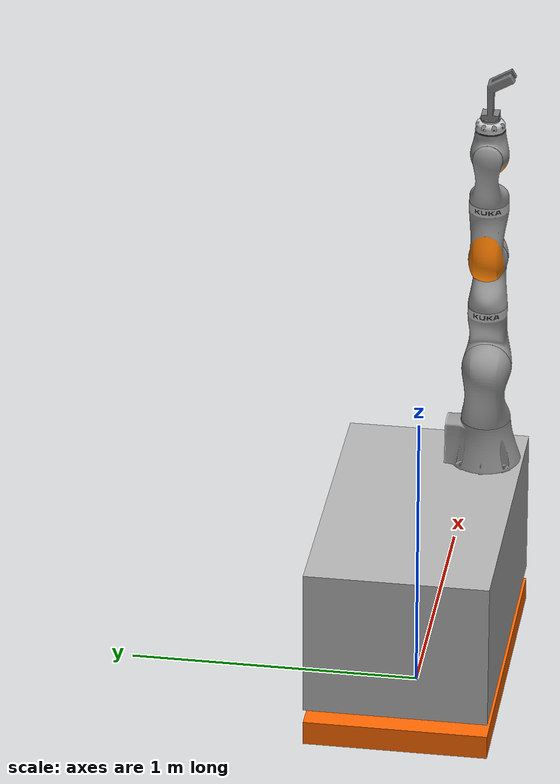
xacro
<?xml version="1.0"?>

<!-- top level -->
<robot name="iiwa14" xmlns:xacro="http://www.ros.org/wiki/xacro">

    <!-- include the lbr iiwa macro -->
    <xacro:include filename="$(find lbr_description)/urdf/iiwa14/iiwa14_description.xacro" />
    <!-- Include the mobile platform xacro-->
    <xacro:include filename="$(find lbr_description)/urdf/iiwa14/mobile_platform.xacro"/>
    <!-- Include the beer tool xacro -->
    <xacro:include filename="$(find lbr_description)/urdf/iiwa14/beer_tool.xacro" />

    <xacro:arg name="robot_name" default="lbr" />
    <xacro:arg name="mode" default="true" />
    <xacro:arg
        name="system_parameters_path"
        default="$(find lbr_ros2_control)/config/lbr_system_parameters.yaml" />

    <!-- fixed to world, see http://classic.gazebosim.org/tutorials?tut=ros_urdf&cat=connect_ros -->
    <link name="world" />

    <!--joint
        between world and link_0-->
    <joint name="world_joint" type="fixed">
        <origin xyz="0 0 0.0775" rpy="0.0 0.0 0.0"/>
        <parent link="world" />
        <child link="base_link" />
    </joint>

    <joint name="base_link-to-iiwa" type="fixed">
        <origin rpy="0 0 -1.5708" xyz="0.363 -0.184 0.2625"/>
        <parent link="base_link_top"/>
        <child link="link_0"/>
    </joint>

    <joint name="joint_ee" type="fixed">
        <parent link="beertool" />
        <child link="link_ee" />
        <origin xyz="0 -0.15 -0.04" rpy="1.570796 0 0" />
    </joint>

    <!-- iiwa -->
    <xacro:iiwa14
        robot_name="$(arg robot_name)"
        mode="$(arg mode)"
        system_parameters_path="$(arg system_parameters_path)" />
</robot>

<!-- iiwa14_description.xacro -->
<robot xmlns:xacro="http://www.ros.org/wiki/xacro">
    <!-- robot as extracted via https://github.com/syuntoku14/fusion2urdf -->
    <xacro:macro name="iiwa14"
        params="robot_name:=^|lbr mode:=^|mock system_parameters_path:=^|'$(find lbr_ros2_control)/config/lbr_system_parameters.yaml'">

        <!-- includes -->
        <xacro:include filename="$(find lbr_description)/gazebo/lbr_gazebo.xacro" />
        <xacro:include filename="$(find lbr_ros2_control)/config/lbr_system_interface.xacro" />

        <!-- joint limits via yaml -->
        <xacro:property name="joint_limits_path"
            value="$(find lbr_description)/urdf/iiwa14/joint_limits.yaml" />
        <xacro:property name="joint_limits" value="${xacro.load_yaml(joint_limits_path)}" />

        <!-- constants -->
        <xacro:property name="PI" value="3.1415926535897931" />
        <xacro:property name="joint_damping" value="10.0" />
        <xacro:property name="joint_friction" value="0.1" />

        <!-- macros for gazebo / mock / hardware -->
        <xacro:lbr_gazebo robot_name="${robot_name}" />
        <xacro:lbr_system_interface
            mode="${mode}"
            joint_limits="${joint_limits}"
            system_parameters_path="${system_parameters_path}" />

        <link name="link_0">
            <inertial>
                <origin rpy="0 0 0" xyz="-0.012822 0.0 0.071507" />
                <mass value="7.050378" />
                <inertia ixx="0.031226" ixy="0.0" ixz="0.000871" iyy="0.039697" iyz="0.0"
                    izz="0.043102" />
            </inertial>
            <visual>
                <origin rpy="0 0 0" xyz="0 0 0" />
                <geometry>
                    <mesh filename="package://lbr_description/meshes/iiwa14/visual/link_0.dae" />
                </geometry>
            </visual>
            <collision>
                <origin rpy="0 0 0" xyz="0 0 0" />
                <geometry>
                    <mesh filename="package://lbr_description/meshes/iiwa14/collision/link_0.stl" />
                </geometry>
            </collision>
        </link>

        <joint name="A1" type="revolute">
            <origin rpy="0 0 0" xyz="0.0 0.0 0.1475" />
            <parent link="link_0" />
            <child link="link_1" />
            <axis xyz="0.0 0.0 1.0" />
            <limit
                effort="${joint_limits['A1']['effort']}"
                lower="${joint_limits['A1']['lower'] * PI / 180}"
                upper="${joint_limits['A1']['upper'] * PI / 180}"
                velocity="${joint_limits['A1']['velocity'] * PI / 180}" />
            <dynamics damping="${joint_damping}" friction="${joint_friction}" />
        </joint>

        <link name="link_1">
            <inertial>
                <origin rpy="0 0 0" xyz="0.0 -0.033795 0.132404" />
                <mass value="5.289529" />
                <inertia ixx="0.042462" ixy="0.0" ixz="0.0" iyy="0.042838" iyz="0.006341"
                    izz="0.01587" />
            </inertial>
            <visual>
                <origin rpy="0 0 0" xyz="0.0 0.0 -0.1475" />
                <geometry>
                    <mesh filename="package://lbr_description/meshes/iiwa14/visual/link_1.dae" />
                </geometry>
            </visual>
            <collision>
                <origin rpy="0 0 0" xyz="0.0 0.0 -0.1475" />
                <geometry>
                    <mesh filename="package://lbr_description/meshes/iiwa14/collision/link_1.stl" />
                </geometry>
            </collision>
        </link>

        <joint name="A2" type="revolute">
            <origin rpy="0 0 0" xyz="0.0 -0.01 0.2125" />
            <parent link="link_1" />
            <child link="link_2" />
            <axis xyz="0.0 1.0 0.0" />
            <limit
                effort="${joint_limits['A2']['effort']}"
                lower="${joint_limits['A2']['lower'] * PI / 180}"
                upper="${joint_limits['A2']['upper'] * PI / 180}"
                velocity="${joint_limits['A2']['velocity'] * PI / 180}" />
            <dynamics damping="${joint_damping}" friction="${joint_friction}" />
        </joint>

        <link name="link_2">
            <inertial>
                <origin rpy="0 0 0" xyz="0.000136 0.047548 0.076322" />
                <mass value="5.688888" />
                <inertia ixx="0.055182" ixy="-3.3e-05" ixz="5.6e-05" iyy="0.053983" iyz="0.010034"
                    izz="0.016523" />
            </inertial>
            <visual>
                <origin rpy="0 0 0" xyz="0.0 0.01 -0.36" />
                <geometry>
                    <mesh filename="package://lbr_description/meshes/iiwa14/visual/link_2.dae" />
                </geometry>
            </visual>
            <collision>
                <origin rpy="0 0 0" xyz="0.0 0.01 -0.36" />
                <geometry>
                    <mesh filename="package://lbr_description/meshes/iiwa14/collision/link_2.stl" />
                </geometry>
            </collision>
        </link>

        <joint name="A3" type="revolute">
            <origin rpy="0 0 0" xyz="0.0 0.01 0.228" />
            <parent link="link_2" />
            <child link="link_3" />
            <axis xyz="0.0 0.0 1.0" />
            <limit
                effort="${joint_limits['A3']['effort']}"
                lower="${joint_limits['A3']['lower'] * PI / 180}"
                upper="${joint_limits['A3']['upper'] * PI / 180}"
                velocity="${joint_limits['A3']['velocity'] * PI / 180}" />
            <dynamics damping="${joint_damping}" friction="${joint_friction}" />
        </joint>

        <link name="link_3">
            <inertial>
                <origin rpy="0 0 0" xyz="0.0 0.034913 0.123108" />
                <mass value="3.461245" />
                <inertia ixx="0.02172" ixy="0.0" ixz="0.0" iyy="0.02073" iyz="-0.003845"
                    izz="0.007701" />
            </inertial>
            <visual>
                <origin rpy="0 0 0" xyz="0.0 0.0 -0.588" />
                <geometry>
                    <mesh filename="package://lbr_description/meshes/iiwa14/visual/link_3.dae" />
                </geometry>
            </visual>
            <collision>
                <origin rpy="0 0 0" xyz="0.0 0.0 -0.588" />
                <geometry>
                    <mesh filename="package://lbr_description/meshes/iiwa14/collision/link_3.stl" />
                </geometry>
            </collision>
        </link>

        <joint name="A4" type="revolute">
            <origin rpy="0 0 0" xyz="0.0 0.0105 0.192" />
            <parent link="link_3" />
            <child link="link_4" />
            <axis xyz="0.0 -1.0 0.0" />
            <limit
                effort="${joint_limits['A4']['effort']}"
                lower="${joint_limits['A4']['lower'] * PI / 180}"
                upper="${joint_limits['A4']['upper'] * PI / 180}"
                velocity="${joint_limits['A4']['velocity'] * PI / 180}" />
            <dynamics damping="${joint_damping}" friction="${joint_friction}" />
        </joint>

        <link name="link_4">
            <inertial>
                <origin rpy="0 0 0" xyz="0.0 -0.039793 0.086944" />
                <mass value="4.122995" />
                <inertia ixx="0.03241" ixy="0.0" ixz="0.0" iyy="0.030758" iyz="-0.006022"
                    izz="0.009883" />
            </inertial>
            <visual>
                <origin rpy="0 0 0" xyz="0.0 -0.0105 -0.78" />
                <geometry>
                    <mesh filename="package://lbr_description/meshes/iiwa14/visual/link_4.dae" />
                </geometry>
            </visual>
            <collision>
                <origin rpy="0 0 0" xyz="0.0 -0.0105 -0.78" />
                <geometry>
                    <mesh filename="package://lbr_description/meshes/iiwa14/collision/link_4.stl" />
                </geometry>
            </collision>
        </link>

        <joint name="A5" type="revolute">
            <origin rpy="0 0 0" xyz="0.0 -0.0105 0.2075" />
            <parent link="link_4" />
            <child link="link_5" />
            <axis xyz="0.0 0.0 1.0" />
            <limit
                effort="${joint_limits['A5']['effort']}"
                lower="${joint_limits['A5']['lower'] * PI / 180}"
                upper="${joint_limits['A5']['upper'] * PI / 180}"
                velocity="${joint_limits['A5']['velocity'] * PI / 180}" />
            <dynamics damping="${joint_damping}" friction="${joint_friction}" />
        </joint>

        <link name="link_5">
            <inertial>
                <origin rpy="0 0 0" xyz="0.0 -0.029824 0.076267" />
                <mass value="1.563756" />
                <inertia ixx="0.008677" ixy="0.0" ixz="0.0" iyy="0.007297" iyz="0.002869"
                    izz="0.003935" />
            </inertial>
            <visual>
                <origin rpy="0 0 0" xyz="0.0 0.0 -0.9875" />
                <geometry>
                    <mesh filename="package://lbr_description/meshes/iiwa14/visual/link_5.dae" />
                </geometry>
            </visual>
            <collision>
                <origin rpy="0 0 0" xyz="0.0 0.0 -0.9875" />
                <geometry>
                    <mesh filename="package://lbr_description/meshes/iiwa14/collision/link_5.stl" />
                </geometry>
            </collision>
        </link>

        <joint name="A6" type="revolute">
            <origin rpy="0 0 0" xyz="0.0 -0.0707 0.1925" />
            <parent link="link_5" />
            <child link="link_6" />
            <axis xyz="0.0 1.0 0.0" />
            <limit
                effort="${joint_limits['A6']['effort']}"
                lower="${joint_limits['A6']['lower'] * PI / 180}"
                upper="${joint_limits['A6']['upper'] * PI / 180}"
                velocity="${joint_limits['A6']['velocity'] * PI / 180}" />
            <dynamics damping="${joint_damping}" friction="${joint_friction}" />
        </joint>

        <link name="link_6">
            <inertial>
                <origin rpy="0 0 0" xyz="0.0 0.07102 0.00495" />
                <mass value="2.457878" />
                <inertia ixx="0.007227" ixy="0.0" ixz="0.0" iyy="0.006958" iyz="0.000318"
                    izz="0.004734" />
            </inertial>
            <visual>
                <origin rpy="0 0 0" xyz="0.0 0.0707 -1.18" />
                <geometry>
                    <mesh filename="package://lbr_description/meshes/iiwa14/visual/link_6.dae" />
                </geometry>
            </visual>
            <collision>
                <origin rpy="0 0 0" xyz="0.0 0.0707 -1.18" />
                <geometry>
                    <mesh filename="package://lbr_description/meshes/iiwa14/collision/link_6.stl" />
                </geometry>
            </collision>
        </link>

        <joint name="A7" type="revolute">
            <origin rpy="0 0 0" xyz="0.0 0.0707 0.091" />
            <parent link="link_6" />
            <child link="link_7" />
            <axis xyz="0.0 0.0 1.0" />
            <limit
                effort="${joint_limits['A7']['effort']}"
                lower="${joint_limits['A7']['lower'] * PI / 180}"
                upper="${joint_limits['A7']['upper'] * PI / 180}"
                velocity="${joint_limits['A7']['velocity'] * PI / 180}" />
            <dynamics damping="${joint_damping}" friction="${joint_friction}" />
        </joint>

        <link name="link_7">
            <inertial>
                <origin rpy="0 0 0" xyz="3.0000e-06 -2.0000e-06 1.3782e-02" />
                <mass value="0.265331" />
                <inertia ixx="0.000175" ixy="0.0" ixz="0.0" iyy="0.000175" iyz="0.0" izz="0.000306" />
            </inertial>
            <visual>
                <origin rpy="0 0 0" xyz="0.0 0.0 -1.271" />
                <geometry>
                    <mesh filename="package://lbr_description/meshes/iiwa14/visual/link_7.dae" />
                </geometry>
            </visual>
            <collision>
                <origin rpy="0 0 0" xyz="0.0 0.0 -1.271" />
                <geometry>
                    <mesh filename="package://lbr_description/meshes/iiwa14/collision/link_7.stl" />
                </geometry>
            </collision>
        </link>

        <link name="link_ee">
        </link>
    </xacro:macro>
</robot>

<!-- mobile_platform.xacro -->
<robot xmlns:xacro="http://www.ros.org/wiki/xacro" name="mobile_platform">
    <link name="base_link">
        <visual>
            <geometry>
                <box size="1.08 0.63 0.085"/>
            </geometry>
            <origin rpy="0 0 0" xyz="0 0 0"/>
            <material name="Orange"/>
        </visual>
        <collision>
            <geometry>
                <box size="1.08 0.63 0.085"/>
            </geometry>
        </collision>
        <inertial>
            <mass value="55.04"/>
            <inertia ixx="5.383" ixy="0.0" ixz="0.0" iyy="7.170" iyz="0.0" izz="1.854"/>
        </inertial>
    </link>

    <joint name="base_bottom_to_middle_joint" type="fixed">
        <parent link="base_link" />
        <child link="base_link_middle" />
        <origin xyz="0 0 0.0665" rpy="0 0 0"/>
    </joint>

    <link name="base_link_middle">
        <visual>
            <geometry>
                <box size="0.84 0.48 0.048"/>
            </geometry>
            <origin rpy="0 0 0" xyz="0 0 0.0"/>
            <material name="Orange"/>
        </visual>
        <collision>
            <geometry>
                <box size="0.920 0.51 0.055"/>
            </geometry>
        </collision>
        <inertial>
            <mass value="18.42"/>
            <inertia ixx="1.0866" ixy="0.0" ixz="0.0" iyy="1.437" iyz="0.0" izz="0.357"/>
        </inertial>
    </link>

    <joint name="base_middle_to_top_joint" type="fixed">
        <parent link="base_link_middle" />
        <child link="base_link_top" />
        <origin xyz="0 0 0.2865" rpy="0 0 0"/>
    </joint>

    <link name="base_link_top">
        <visual>
            <geometry>
                <box size="1.08 0.63 0.525"/>
            </geometry>
            <origin rpy="0 0 0" xyz="0 0 0.0"/>
            <material name="Grey"/>
        </visual>
        <collision>
            <geometry>
                <box size="1.08 0.63 0.5335"/>
            </geometry>
        </collision>
        <inertial>
            <mass value="339.96"/>
            <inertia ixx="39.1077" ixy="0.0" ixz="0.0" iyy="42.397" iyz="0.0" izz="18.238"/>
        </inertial>
    </link>
    <link name="front_left_wheel_link">
        <visual>
            <origin xyz="0 0 0" rpy="0 0 0" />
            <geometry>
                <mesh filename="package://lbr_description/meshes/wheels/omni_wheel_1.dae" />
            </geometry>
        </visual>
        <collision>
            <geometry>
                <cylinder length="0.175" radius="0.125" />
            </geometry>
        </collision>

        <inertial>
            <mass value="6.5" />
            <origin xyz="0 0 0" />
            <inertia ixx="0.04197" ixy="0.0" ixz="0.0" iyy="0.0508" iyz="0.0" izz="0.04197"/>
        </inertial>
    </link>

    <link name="front_right_wheel_link">
        <visual>
            <origin xyz="0 0 0" rpy="0 0 0" />
            <geometry>
                <mesh filename="package://lbr_description/meshes/wheels/omni_wheel_1.dae" />
            </geometry>
        </visual>
        <collision>
            <geometry>
                <cylinder length="0.175" radius="0.125" />
            </geometry>
        </collision>

        <inertial>
            <mass value="6.5" />
            <origin xyz="0 0 0" />
            <inertia ixx="0.04197" ixy="0.0" ixz="0.0" iyy="0.0508" iyz="0.0" izz="0.04197"/>
        </inertial>
    </link>

    <link name="back_left_wheel_link">
        <visual>
            <origin xyz="0 0 0" rpy="0 0 0" />
            <geometry>
                <mesh filename="package://lbr_description/meshes/wheels/omni_wheel_1.dae" />
            </geometry>
        </visual>
        <collision>
            <geometry>
                <cylinder length="0.175" radius="0.125" />
            </geometry>
        </collision>

        <inertial>
            <mass value="6.5" />
            <origin xyz="0 0 0" />
            <inertia ixx="0.04197" ixy="0.0" ixz="0.0" iyy="0.0508" iyz="0.0" izz="0.04197"/>
        </inertial>
    </link>

    <link name="back_right_wheel_link">
        <visual>
            <origin xyz="0 0 0" rpy="0 0 0" />
            <geometry>
                <mesh filename="package://lbr_description/meshes/wheels/omni_wheel_1.dae" />
            </geometry>
        </visual>
        <collision>
            <geometry>
                <cylinder length="0.175" radius="0.125" />
            </geometry>
        </collision>
        <inertial>
            <mass value="6.5" />
            <origin xyz="0 0 0" />
            <inertia ixx="0.04197" ixy="0.0" ixz="0.0" iyy="0.0508" iyz="0.0" izz="0.04197"/>
        </inertial>
    </link>

    <joint name="front_left_wheel_joint" type="fixed">
        <parent link="base_link"/>
        <child link="front_left_wheel_link"/>
        <axis xyz="0 1 0"/>
        <origin xyz="0.28 0.1825 0.0535"/>
        <limit effort="100" velocity="100"/>
        <joint_properties damping="0.0" friction="0.0"/>
    </joint>

    <joint name="front_right_wheel_joint" type="fixed">
        <parent link="base_link"/>
        <child link="front_right_wheel_link"/>
        <origin xyz="0.28 -0.1825 0.0535"/>
        <axis xyz="0 1 0"/>
        <limit effort="100" velocity="100"/>
        <joint_properties damping="0.0" friction="0.0"/>
    </joint>

    <joint name="back_left_wheel_joint" type="fixed">
        <parent link="base_link"/>
        <child link="back_left_wheel_link"/>
        <origin xyz="-0.28 0.1825 0.0535"/>
        <axis xyz="0 1 0"/>
        <limit effort="100" velocity="100"/>
        <joint_properties damping="0.0" friction="0.0"/>
    </joint>

    <joint name="back_right_wheel_joint" type="fixed">
        <parent link="base_link"/>
        <child link="back_right_wheel_link"/>
        <origin xyz="-0.28 -0.1825 0.0535"/>
        <axis xyz="0 1 0"/>
        <limit effort="100" velocity="100"/>
        <joint_properties damping="0.0" friction="0.0"/>
    </joint>

    <material name="Orange">
        <color rgba="1.0 0.4 0.0 1.0"/>
    </material>
    <material name="Grey">
        <color rgba="0.7 0.7 0.7 1.0"/>
    </material>
    <material name="DarkGrey">
        <color rgba="0.3 0.3 0.3 1.0"/>
    </material>
    <material name="White">
        <color rgba="1.0 1.0 1.0 1.0"/>
    </material>
    <material name="Black">
        <color rgba="0.0 0.0 0.0 1.0"/>
    </material>
    <material name="Red">
        <color rgba="1.0 0.0 0.0 1.0"/>
    </material>
    <material name="Green">
        <color rgba="0.0 1.0 0.0 1.0"/>
    </material>
    <material name="aluminum">
        <color rgba="0.5 0.5 0.5 1"/>
    </material>

</robot>

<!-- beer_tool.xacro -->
<robot xmlns:xacro="http://www.ros.org/wiki/xacro" name="beertool">

  <xacro:property name="PI" value="3.14159">

    </xacro:property>

    <link name="beertool">
        <inertial>
            <origin xyz="0.0 0.0 0.0" rpy="0.0 0.0 0.0"/>
            <mass value="1.0"/>
            <inertia ixx="1.0e-06" ixy="0.0" ixz="0.0" iyy="1.0e-06" iyz="0.0" izz="1.0e-06"/>
        </inertial>
        <visual name="">
            <origin xyz="0.0 0.0 0.0" rpy="0.0 0.0 0.0"/>
            <geometry>
                <mesh filename="package://lbr_description/meshes/scene_meshes/beertoolV2.stl" scale="1.0 1.0 1.0"/>
            </geometry>
            <material name="">
                <color rgba="0.5 0.5 0.5 1.0"/>
            </material>
        </visual>
        <collision>
            <origin xyz="0.0 0.0 0.0" rpy="0.0 0.0 0.0"/>
            <geometry>
                <mesh filename="package://lbr_description/meshes/scene_meshes/beertoolV2.stl" scale="1.0 1.0 1.0"/>
            </geometry>
        </collision>
    </link>

    <joint name="beertool_link_ee_joint" type="fixed">
        <origin xyz="0.0 0.0 0.035" rpy="${-PI/2} 0 ${PI/2}"/>
        <parent link="link_7"/>
        <child link="beertool"/>
    </joint>

</robot>
